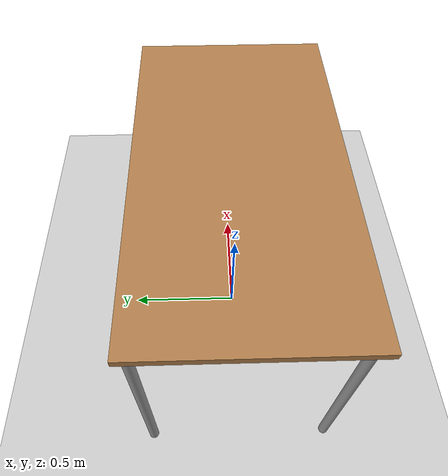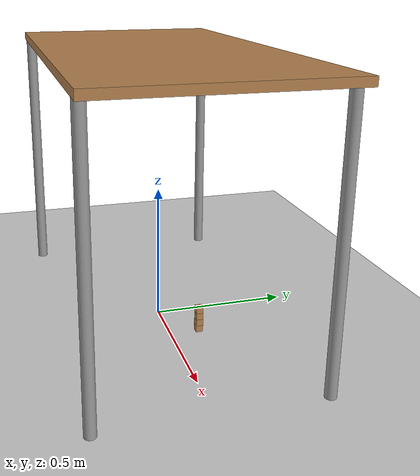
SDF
<sdf version="1.6">
 <world name="default">
  <light name="sun" type="directional">
   <pose>0 0 10 0 -0 0</pose>
   <diffuse>0.8 0.8 0.8 1</diffuse>
   <specular>0.2 0.2 0.2 1</specular>
   <attenuation>
    <range>1000</range>
    <constant>0.9</constant>
    <linear>0.01</linear>
    <quadratic>0.001</quadratic>
   </attenuation>
   <direction>-0.5 0.1 -0.9</direction>
  </light>
  <model name="ground_plane">
   <static>1</static>
   <link name="link">
    <collision name="collision">
     <geometry><plane><normal>0 0 1</normal><size>100 100</size></plane></geometry>
     <surface>
      <contact><collide_bitmask>65535</collide_bitmask></contact>
      <friction><ode><mu>100</mu><mu2>50</mu2></ode></friction>
     </surface>
    </collision>
    <visual name="visual">
     <cast_shadows>0</cast_shadows>
     <geometry><plane><normal>0 0 1</normal><size>100 100</size></plane></geometry>
     <material>
      <script><uri>file://media/materials/scripts/gazebo.material</uri><name>Gazebo/Grey</name></script>
     </material>
    </visual>
   </link>
  </model>
  <gravity>0 0 -9.8</gravity>
  <magnetic_field>6e-06 2.3e-05 -4.2e-05</magnetic_field>
  <atmosphere type="adiabatic"/>
  <physics name="default_physics" default="0" type="ode">
   <max_step_size>0.001</max_step_size>
   <real_time_factor>1</real_time_factor>
   <real_time_update_rate>1000</real_time_update_rate>
  </physics>
  <scene><ambient>0.4 0.4 0.4 1</ambient><background>0.7 0.7 0.7 1</background><shadows>1</shadows></scene>
  <audio><device>default</device></audio>
  <spherical_coordinates>
   <surface_model>EARTH_WGS84</surface_model>
   <latitude_deg>0</latitude_deg>
   <longitude_deg>0</longitude_deg>
   <elevation>0</elevation>
   <heading_deg>0</heading_deg>
  </spherical_coordinates>
  <model name="table">
   <link name="link">
    <inertial>
     <mass>1</mass>
     <inertia><ixx>1</ixx><ixy>0</ixy><ixz>0</ixz><iyy>1</iyy><iyz>0</iyz><izz>1</izz></inertia>
    </inertial>
    <visual name="back_right_leg">
     <pose>-0.68 -0.38 0.5 0 -0 0</pose>
     <geometry><cylinder><radius>0.02</radius><length>1</length></cylinder></geometry>
     <material>
      <script><uri>file://media/materials/scripts/gazebo.material</uri><name>Gazebo/Grey</name></script>
      <shader type="vertex"><normal_map>__default__</normal_map></shader>
      <ambient>0.3 0.3 0.3 1</ambient>
      <diffuse>0.7 0.7 0.7 1</diffuse>
      <specular>0.01 0.01 0.01 1</specular>
      <emissive>0 0 0 1</emissive>
     </material>
    </visual>
    <visual name="front_right_leg">
     <pose>0.68 -0.38 0.5 0 -0 0</pose>
     <geometry><cylinder><radius>0.02</radius><length>1</length></cylinder></geometry>
     <material>
      <script><uri>file://media/materials/scripts/gazebo.material</uri><name>Gazebo/Grey</name></script>
      <shader type="vertex"><normal_map>__default__</normal_map></shader>
      <ambient>0.3 0.3 0.3 1</ambient>
      <diffuse>0.7 0.7 0.7 1</diffuse>
      <specular>0.01 0.01 0.01 1</specular>
      <emissive>0 0 0 1</emissive>
     </material>
    </visual>
    <visual name="back_left_leg">
     <pose>-0.68 0.38 0.5 0 -0 0</pose>
     <geometry><cylinder><radius>0.02</radius><length>1</length></cylinder></geometry>
     <material>
      <script><uri>file://media/materials/scripts/gazebo.material</uri><name>Gazebo/Grey</name></script>
      <shader type="vertex"><normal_map>__default__</normal_map></shader>
      <ambient>1 1 1 1</ambient>
      <diffuse>0.7 0.7 0.7 1</diffuse>
      <specular>0.01 0.01 0.01 1</specular>
      <emissive>0 0 0 1</emissive>
     </material>
    </visual>
    <visual name="front_left_leg">
     <pose>0.68 0.38 0.5 0 -0 0</pose>
     <geometry><cylinder><radius>0.02</radius><length>1</length></cylinder></geometry>
     <material>
      <script><uri>file://media/materials/scripts/gazebo.material</uri><name>Gazebo/Grey</name></script>
      <shader type="vertex"><normal_map>__default__</normal_map></shader>
      <ambient>0.3 0.3 0.3 1</ambient>
      <diffuse>0.7 0.7 0.7 1</diffuse>
      <specular>0.01 0.01 0.01 1</specular>
      <emissive>0 0 0 1</emissive>
     </material>
    </visual>
    <visual name="visual1">
     <pose>0 0 1 0 -0 0</pose>
     <geometry><box><size>1.5 0.8 0.03</size></box></geometry>
     <material>
      <script><uri>file://media/materials/scripts/gazebo.material</uri><name>Gazebo/Wood</name></script>
      <ambient>1 1 1 0</ambient>
      <shader type="vertex"><normal_map>__default__</normal_map></shader>
      <diffuse>1 1 1 1</diffuse>
      <specular>0.2 0.2 0.2 1</specular>
      <emissive>0 0 0 1</emissive>
     </material>
    </visual>
    <collision name="surface">
     <pose>0 0 1 0 -0 0</pose>
     <geometry><box><size>1.5 0.8 0.03</size></box></geometry>
     <surface>
      <friction>
       <ode><mu>0.6</mu><mu2>0.6</mu2><fdir1>0 0 0</fdir1><slip1>0</slip1><slip2>0</slip2></ode>
       <torsional>
        <coefficient>1</coefficient>
        <patch_radius>0</patch_radius>
        <surface_radius>0</surface_radius>
        <use_patch_radius>1</use_patch_radius>
        <ode><slip>0</slip></ode>
       </torsional>
      </friction>
      <bounce><restitution_coefficient>0</restitution_coefficient><threshold>1e+06</threshold></bounce>
      <contact>
       <collide_without_contact>0</collide_without_contact>
       <collide_without_contact_bitmask>1</collide_without_contact_bitmask>
       <collide_bitmask>1</collide_bitmask>
       <ode>
        <soft_cfm>0</soft_cfm>
        <soft_erp>0.2</soft_erp>
        <kp>1e+13</kp>
        <kd>1</kd>
        <max_vel>0.01</max_vel>
        <min_depth>0</min_depth>
       </ode>
       <bullet>
        <split_impulse>1</split_impulse>
        <split_impulse_penetration_threshold>-0.01</split_impulse_penetration_threshold>
        <soft_cfm>0</soft_cfm>
        <soft_erp>0.2</soft_erp>
        <kp>1e+13</kp>
        <kd>1</kd>
       </bullet>
      </contact>
     </surface>
    </collision>
    <collision name="front_right_leg">
     <pose>0.68 -0.38 0.5 0 -0 0</pose>
     <geometry><cylinder><radius>0.02</radius><length>1</length></cylinder></geometry>
     <surface>
      <friction>
       <ode><mu>1</mu><mu2>1</mu2><fdir1>0 0 0</fdir1><slip1>0</slip1><slip2>0</slip2></ode>
       <torsional>
        <coefficient>1</coefficient>
        <patch_radius>0</patch_radius>
        <surface_radius>0</surface_radius>
        <use_patch_radius>1</use_patch_radius>
        <ode><slip>0</slip></ode>
       </torsional>
      </friction>
      <bounce><restitution_coefficient>0</restitution_coefficient><threshold>1e+06</threshold></bounce>
      <contact>
       <collide_without_contact>0</collide_without_contact>
       <collide_without_contact_bitmask>1</collide_without_contact_bitmask>
       <collide_bitmask>1</collide_bitmask>
       <ode>
        <soft_cfm>0</soft_cfm>
        <soft_erp>0.2</soft_erp>
        <kp>1e+13</kp>
        <kd>1</kd>
        <max_vel>0.01</max_vel>
        <min_depth>0</min_depth>
       </ode>
       <bullet>
        <split_impulse>1</split_impulse>
        <split_impulse_penetration_threshold>-0.01</split_impulse_penetration_threshold>
        <soft_cfm>0</soft_cfm>
        <soft_erp>0.2</soft_erp>
        <kp>1e+13</kp>
        <kd>1</kd>
       </bullet>
      </contact>
     </surface>
    </collision>
    <collision name="front_left_leg">
     <pose>0.68 0.38 0.5 0 -0 0</pose>
     <geometry><cylinder><radius>0.02</radius><length>1</length></cylinder></geometry>
     <surface>
      <friction>
       <ode><mu>1</mu><mu2>1</mu2><fdir1>0 0 0</fdir1><slip1>0</slip1><slip2>0</slip2></ode>
       <torsional>
        <coefficient>1</coefficient>
        <patch_radius>0</patch_radius>
        <surface_radius>0</surface_radius>
        <use_patch_radius>1</use_patch_radius>
        <ode><slip>0</slip></ode>
       </torsional>
      </friction>
      <bounce><restitution_coefficient>0</restitution_coefficient><threshold>1e+06</threshold></bounce>
      <contact>
       <collide_without_contact>0</collide_without_contact>
       <collide_without_contact_bitmask>1</collide_without_contact_bitmask>
       <collide_bitmask>1</collide_bitmask>
       <ode>
        <soft_cfm>0</soft_cfm>
        <soft_erp>0.2</soft_erp>
        <kp>1e+13</kp>
        <kd>1</kd>
        <max_vel>0.01</max_vel>
        <min_depth>0</min_depth>
       </ode>
       <bullet>
        <split_impulse>1</split_impulse>
        <split_impulse_penetration_threshold>-0.01</split_impulse_penetration_threshold>
        <soft_cfm>0</soft_cfm>
        <soft_erp>0.2</soft_erp>
        <kp>1e+13</kp>
        <kd>1</kd>
       </bullet>
      </contact>
     </surface>
    </collision>
    <collision name="back_left_leg">
     <pose>-0.68 0.38 0.5 0 -0 0</pose>
     <geometry><cylinder><radius>0.02</radius><length>1</length></cylinder></geometry>
     <surface>
      <friction>
       <ode><mu>1</mu><mu2>1</mu2><fdir1>0 0 0</fdir1><slip1>0</slip1><slip2>0</slip2></ode>
       <torsional>
        <coefficient>1</coefficient>
        <patch_radius>0</patch_radius>
        <surface_radius>0</surface_radius>
        <use_patch_radius>1</use_patch_radius>
        <ode><slip>0</slip></ode>
       </torsional>
      </friction>
      <bounce><restitution_coefficient>0</restitution_coefficient><threshold>1e+06</threshold></bounce>
      <contact>
       <collide_without_contact>0</collide_without_contact>
       <collide_without_contact_bitmask>1</collide_without_contact_bitmask>
       <collide_bitmask>1</collide_bitmask>
       <ode>
        <soft_cfm>0</soft_cfm>
        <soft_erp>0.2</soft_erp>
        <kp>1e+13</kp>
        <kd>1</kd>
        <max_vel>0.01</max_vel>
        <min_depth>0</min_depth>
       </ode>
       <bullet>
        <split_impulse>1</split_impulse>
        <split_impulse_penetration_threshold>-0.01</split_impulse_penetration_threshold>
        <soft_cfm>0</soft_cfm>
        <soft_erp>0.2</soft_erp>
        <kp>1e+13</kp>
        <kd>1</kd>
       </bullet>
      </contact>
     </surface>
    </collision>
    <collision name="back_right_leg">
     <pose>-0.68 -0.38 0.5 0 -0 0</pose>
     <geometry><cylinder><radius>0.02</radius><length>1</length></cylinder></geometry>
     <surface>
      <friction>
       <ode><mu>1</mu><mu2>1</mu2><fdir1>0 0 0</fdir1><slip1>0</slip1><slip2>0</slip2></ode>
       <torsional>
        <coefficient>1</coefficient>
        <patch_radius>0</patch_radius>
        <surface_radius>0</surface_radius>
        <use_patch_radius>1</use_patch_radius>
        <ode><slip>0</slip></ode>
       </torsional>
      </friction>
      <bounce><restitution_coefficient>0</restitution_coefficient><threshold>1e+06</threshold></bounce>
      <contact>
       <collide_without_contact>0</collide_without_contact>
       <collide_without_contact_bitmask>1</collide_without_contact_bitmask>
       <collide_bitmask>1</collide_bitmask>
       <ode>
        <soft_cfm>0</soft_cfm>
        <soft_erp>0.2</soft_erp>
        <kp>1e+13</kp>
        <kd>1</kd>
        <max_vel>0.01</max_vel>
        <min_depth>0</min_depth>
       </ode>
       <bullet>
        <split_impulse>1</split_impulse>
        <split_impulse_penetration_threshold>-0.01</split_impulse_penetration_threshold>
        <soft_cfm>0</soft_cfm>
        <soft_erp>0.2</soft_erp>
        <kp>1e+13</kp>
        <kd>1</kd>
       </bullet>
      </contact>
     </surface>
    </collision>
   </link>
   <static>1</static>
  </model>
  <model name="wood_cube_2_5cm">
   <link name="link">
    <pose>0 0 0.0125 0 -0 0</pose>
    <inertial>
     <mass>0.0073</mass>
     <inertia><ixx>7.6e-07</ixx><ixy>0</ixy><ixz>0</ixz><iyy>7.6e-07</iyy><iyz>0</iyz><izz>7.6e-07</izz></inertia>
    </inertial>
    <self_collide>1</self_collide>
    <visual name="visual">
     <geometry><box><size>0.025 0.025 0.025</size></box></geometry>
     <material>
      <script><uri>file://media/materials/scripts/gazebo.material</uri><name>Gazebo/Wood</name></script>
      <ambient>0 1 0 0</ambient>
      <shader type="vertex"><normal_map>__default__</normal_map></shader>
      <diffuse>0 1 0 1</diffuse>
      <specular>0.2 0.2 0.2 1</specular>
      <emissive>0 0 0 1</emissive>
     </material>
    </visual>
    <collision name="collision">
     <geometry><box><size>0.025 0.025 0.025</size></box></geometry>
     <surface>
      <friction>
       <ode><mu>1</mu><mu2>1</mu2><fdir1>0 0 0</fdir1><slip1>0</slip1><slip2>0</slip2></ode>
       <torsional>
        <coefficient>1</coefficient>
        <patch_radius>0</patch_radius>
        <surface_radius>0.01</surface_radius>
        <use_patch_radius>0</use_patch_radius>
        <ode><slip>0</slip></ode>
       </torsional>
      </friction>
      <bounce><restitution_coefficient>0</restitution_coefficient><threshold>1e+06</threshold></bounce>
      <contact>
       <collide_without_contact>0</collide_without_contact>
       <collide_without_contact_bitmask>1</collide_without_contact_bitmask>
       <collide_bitmask>1</collide_bitmask>
       <ode>
        <soft_cfm>0</soft_cfm>
        <soft_erp>0.2</soft_erp>
        <kp>100000</kp>
        <kd>100</kd>
        <max_vel>100</max_vel>
        <min_depth>0.001</min_depth>
       </ode>
       <bullet>
        <split_impulse>1</split_impulse>
        <split_impulse_penetration_threshold>-0.01</split_impulse_penetration_threshold>
        <soft_cfm>0</soft_cfm>
        <soft_erp>0.2</soft_erp>
        <kp>100000</kp>
        <kd>100</kd>
       </bullet>
      </contact>
     </surface>
    </collision>
   </link>
   <static>0</static>
   <pose>0.2 0.1 0.014 -9e-06 -2e-06 0</pose>
  </model>
  <model name="wood_cube_2_5cm_clone">
   <link name="link">
    <pose>0 -0 0.0125 0 -0 0</pose>
    <inertial>
     <mass>0.0073</mass>
     <inertia><ixx>7.6e-07</ixx><ixy>0</ixy><ixz>0</ixz><iyy>7.6e-07</iyy><iyz>0</iyz><izz>7.6e-07</izz></inertia>
    </inertial>
    <visual name="visual">
     <geometry><box><size>0.025 0.025 0.025</size></box></geometry>
     <material>
      <script><uri>file://media/materials/scripts/gazebo.material</uri><name>Gazebo/Wood</name></script>
      <ambient>0 0 1 1</ambient>
      <shader type="vertex"><normal_map>__default__</normal_map></shader>
      <diffuse>0 0 1 1</diffuse>
      <specular>0 0 1 1</specular>
      <emissive>0 0 1 1</emissive>
     </material>
    </visual>
    <collision name="collision">
     <geometry><box><size>0.025 0.025 0.025</size></box></geometry>
     <surface>
      <friction>
       <ode><mu>1</mu><mu2>1</mu2><fdir1>0 0 0</fdir1><slip1>0</slip1><slip2>0</slip2></ode>
       <torsional>
        <coefficient>1</coefficient>
        <patch_radius>0</patch_radius>
        <surface_radius>0.01</surface_radius>
        <use_patch_radius>0</use_patch_radius>
        <ode><slip>0</slip></ode>
       </torsional>
      </friction>
      <bounce><restitution_coefficient>0</restitution_coefficient><threshold>1e+06</threshold></bounce>
      <contact>
       <collide_without_contact>0</collide_without_contact>
       <collide_without_contact_bitmask>1</collide_without_contact_bitmask>
       <collide_bitmask>1</collide_bitmask>
       <ode>
        <soft_cfm>0</soft_cfm>
        <soft_erp>0.2</soft_erp>
        <kp>100000</kp>
        <kd>100</kd>
        <max_vel>100</max_vel>
        <min_depth>0.001</min_depth>
       </ode>
       <bullet>
        <split_impulse>1</split_impulse>
        <split_impulse_penetration_threshold>-0.01</split_impulse_penetration_threshold>
        <soft_cfm>0</soft_cfm>
        <soft_erp>0.2</soft_erp>
        <kp>100000</kp>
        <kd>100</kd>
       </bullet>
      </contact>
     </surface>
    </collision>
   </link>
   <static>0</static>
   <pose>0.2 0.099999 0.06235 -0.001133 0.002989 -7e-06</pose>
  </model>
  <model name="wood_cube_2_5cm_clone_0">
   <link name="link">
    <pose>0 -0 0.0125 0 -0 0</pose>
    <inertial>
     <mass>0.0073</mass>
     <inertia><ixx>7.6e-07</ixx><ixy>0</ixy><ixz>0</ixz><iyy>7.6e-07</iyy><iyz>0</iyz><izz>7.6e-07</izz></inertia>
    </inertial>
    <visual name="visual">
     <geometry><box><size>0.025 0.025 0.025</size></box></geometry>
     <material>
      <script><uri>file://media/materials/scripts/gazebo.material</uri><name>Gazebo/Wood</name></script>
      <ambient>1 1 0 0</ambient>
      <shader type="vertex"><normal_map>__default__</normal_map></shader>
      <diffuse>1 1 0 1</diffuse>
      <specular>1 1 0 1</specular>
      <emissive>1 1 0 1</emissive>
     </material>
    </visual>
    <collision name="collision">
     <geometry><box><size>0.025 0.025 0.025</size></box></geometry>
     <surface>
      <friction>
       <ode><mu>1</mu><mu2>1</mu2><fdir1>0 0 0</fdir1><slip1>0</slip1><slip2>0</slip2></ode>
       <torsional>
        <coefficient>1</coefficient>
        <patch_radius>0</patch_radius>
        <surface_radius>0.01</surface_radius>
        <use_patch_radius>0</use_patch_radius>
        <ode><slip>0</slip></ode>
       </torsional>
      </friction>
      <bounce><restitution_coefficient>0</restitution_coefficient><threshold>1e+06</threshold></bounce>
      <contact>
       <collide_without_contact>0</collide_without_contact>
       <collide_without_contact_bitmask>1</collide_without_contact_bitmask>
       <collide_bitmask>1</collide_bitmask>
       <ode>
        <soft_cfm>0</soft_cfm>
        <soft_erp>0.2</soft_erp>
        <kp>100000</kp>
        <kd>100</kd>
        <max_vel>100</max_vel>
        <min_depth>0.001</min_depth>
       </ode>
       <bullet>
        <split_impulse>1</split_impulse>
        <split_impulse_penetration_threshold>-0.01</split_impulse_penetration_threshold>
        <soft_cfm>0</soft_cfm>
        <soft_erp>0.2</soft_erp>
        <kp>100000</kp>
        <kd>100</kd>
       </bullet>
      </contact>
     </surface>
    </collision>
   </link>
   <static>0</static>
   <pose>0.200002 0.1 0.038 1.1e-05 2e-06 -1.6e-05</pose>
  </model>
  <model name="wood_cube_2_5cm_clone_1">
   <link name="link">
    <pose>-0 -0 0.0125 0 -0 0</pose>
    <inertial>
     <mass>0.0073</mass>
     <inertia><ixx>7.6e-07</ixx><ixy>0</ixy><ixz>0</ixz><iyy>7.6e-07</iyy><iyz>0</iyz><izz>7.6e-07</izz></inertia>
    </inertial>
    <self_collide>1</self_collide>
    <visual name="visual">
     <geometry><box><size>0.025 0.025 0.025</size></box></geometry>
     <material>
      <script><uri>file://media/materials/scripts/gazebo.material</uri><name>Gazebo/Wood</name></script>
      <ambient>0.667 0 0 0</ambient>
      <shader type="vertex"><normal_map>__default__</normal_map></shader>
      <diffuse>0.667 0 0 1</diffuse>
      <specular>0.2 0.2 0.2 1</specular>
      <emissive>0.702 0.702 0.702 1</emissive>
     </material>
    </visual>
    <collision name="collision">
     <geometry><box><size>0.025 0.025 0.025</size></box></geometry>
     <surface>
      <friction>
       <ode><mu>1</mu><mu2>1</mu2><fdir1>0 0 0</fdir1><slip1>0</slip1><slip2>0</slip2></ode>
       <torsional>
        <coefficient>1</coefficient>
        <patch_radius>0</patch_radius>
        <surface_radius>0.01</surface_radius>
        <use_patch_radius>0</use_patch_radius>
        <ode><slip>0</slip></ode>
       </torsional>
      </friction>
      <bounce><restitution_coefficient>0</restitution_coefficient><threshold>1e+06</threshold></bounce>
      <contact>
       <collide_without_contact>0</collide_without_contact>
       <collide_without_contact_bitmask>1</collide_without_contact_bitmask>
       <collide_bitmask>1</collide_bitmask>
       <ode>
        <soft_cfm>0</soft_cfm>
        <soft_erp>0.2</soft_erp>
        <kp>100000</kp>
        <kd>100</kd>
        <max_vel>100</max_vel>
        <min_depth>0.001</min_depth>
       </ode>
       <bullet>
        <split_impulse>1</split_impulse>
        <split_impulse_penetration_threshold>-0.01</split_impulse_penetration_threshold>
        <soft_cfm>0</soft_cfm>
        <soft_erp>0.2</soft_erp>
        <kp>100000</kp>
        <kd>100</kd>
       </bullet>
      </contact>
     </surface>
    </collision>
   </link>
   <static>0</static>
   <pose>0.2 0.1 0.08735 0 -0 0</pose>
  </model>
 </world>
</sdf>
